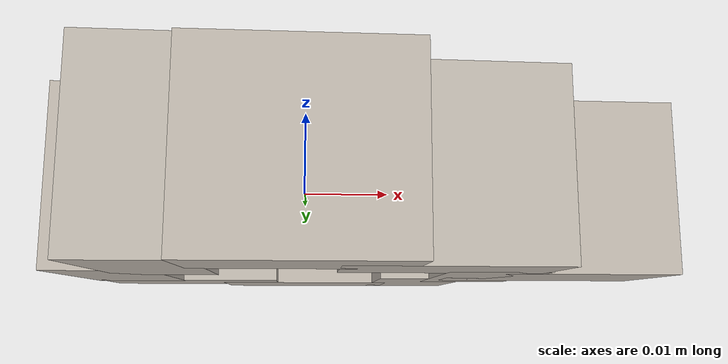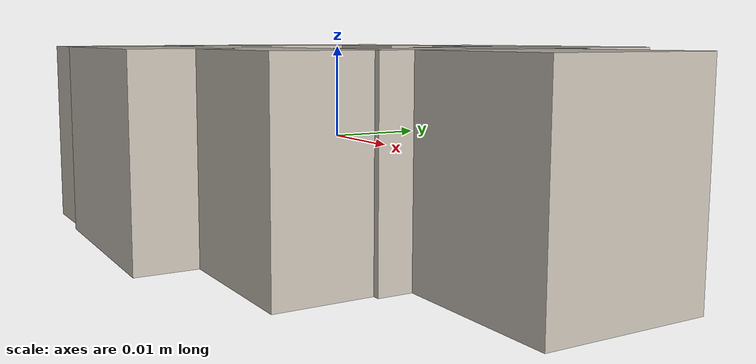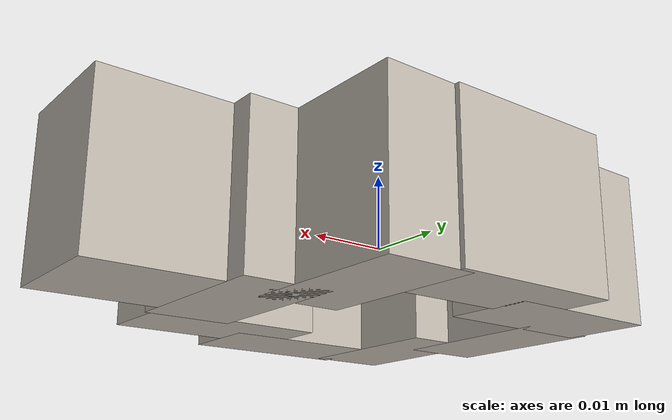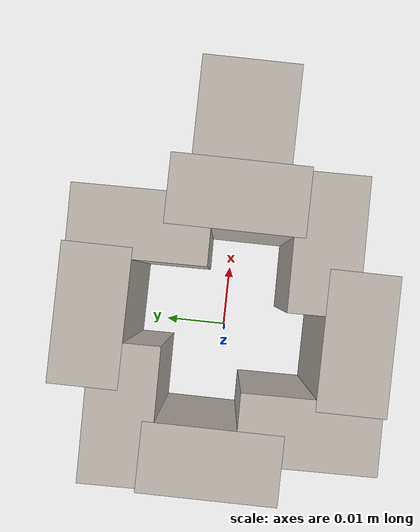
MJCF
<mujoco model="round-nut">
  <asset>
    <texture file="../textures/metal.png" type="2d" name="tex-metal"/>
    <material name="metal" reflectance="0.7" texrepeat="1 1" texture="tex-metal" texuniform="true"/>
  </asset>
  <worldbody>
    <body>
      <body name="collision">
        <geom pos="-0.021225 0 0.0" size="0.005625 0.01125 0.01" type="box" solimp="0.998 0.998 0.001" solref="0.02 1" density="100" friction="0.95 0.3 0.1" material="metal" group="1" condim="4"/>
        <geom pos="0.021225 0 0.0" size="0.005625 0.01125 0.01" type="box" solimp="0.998 0.998 0.001" solref="0.02 1" density="100" friction="0.95 0.3 0.1" material="metal" group="1" condim="4"/>
        <geom pos="0 -0.021225 0.0" size="0.01125 0.005625 0.01" type="box" solimp="0.998 0.998 0.001" solref="0.02 1" density="100" friction="0.95 0.3 0.1" material="metal" group="1" condim="4"/>
        <geom pos="0 0.021225 0.0" size="0.01125 0.005625 0.01" type="box" solimp="0.998 0.998 0.001" solref="0.02 1" density="100" friction="0.95 0.3 0.1" material="metal" group="1" condim="4"/>
        <geom pos="-0.015 -0.015 0.0" size="0.005625 0.01125 0.01" axisangle='0 0 1 0.785398' type="box" solimp="0.998 0.998 0.001" solref="0.02 1" density="100" friction="0.95 0.3 0.1" material="metal" group="1" condim="4"/>
        <geom pos="0.015 0.015 0.0" size="0.005625 0.01125 0.01" axisangle='0 0 1 0.785398' type="box" solimp="0.998 0.998 0.001" solref="0.02 1" density="100" friction="0.95 0.3 0.1" material="metal" group="1" condim="4"/>
        <geom pos="0.015 -0.015 0.0" size="0.01125 0.005625 0.01" axisangle='0 0 1 0.785398' type="box" solimp="0.998 0.998 0.001" solref="0.02 1" density="100" friction="0.95 0.3 0.1" material="metal" group="1" condim="4"/>
        <geom pos="-0.015 0.015 0.0" size="0.01125 0.005625 0.01" axisangle='0 0 1 0.785398' type="box" solimp="0.998 0.998 0.001" solref="0.02 1" density="100" friction="0.95 0.3 0.1" material="metal" group="1" condim="4"/>
        <geom pos="0.03 0 0.0" size="0.012625 0.0079375 0.01" type="box" solimp="0.998 0.998 0.001" solref="0.02 1" density="100" friction="0.95 0.3 0.1" material="metal" group="1" condim="4"/>
      </body>
      <site rgba="0 0 0 0" size="0.005" pos="0 0 -0.05" name="bottom_site"/>
      <site rgba="0 0 0 0" size="0.005" pos="0 0 0.025" name="top_site"/>
      <site rgba="0 0 0 0" size="0.005" pos="0.11 0.05 0" name="horizontal_radius_site"/>
    </body>
  </worldbody>
</mujoco>
